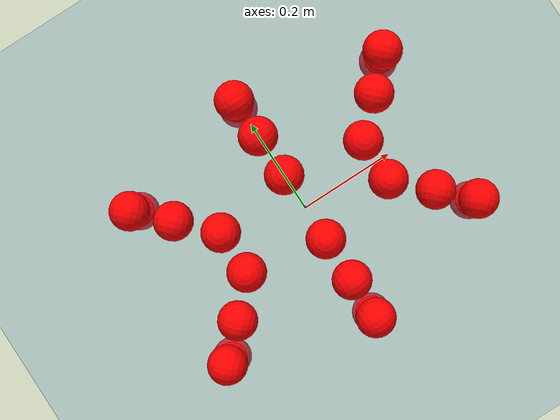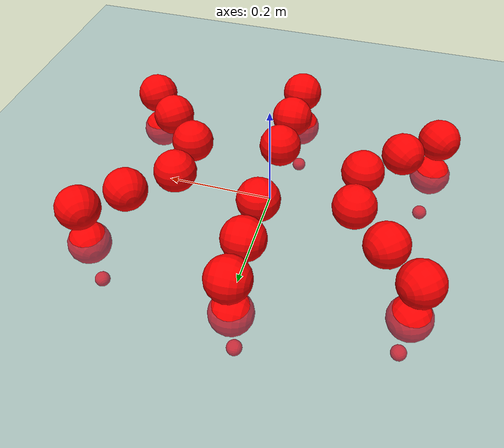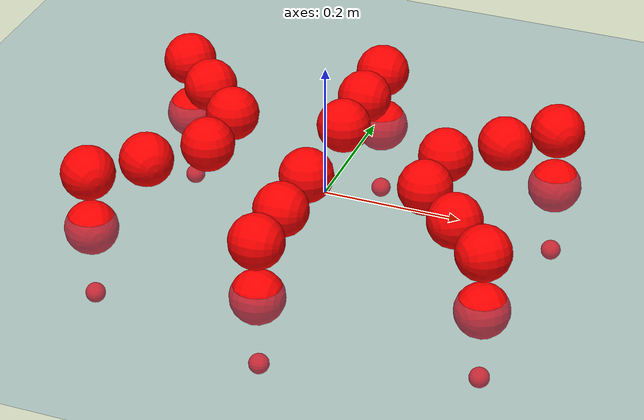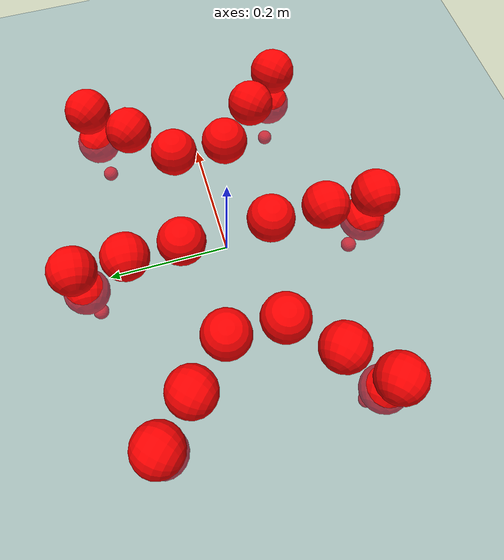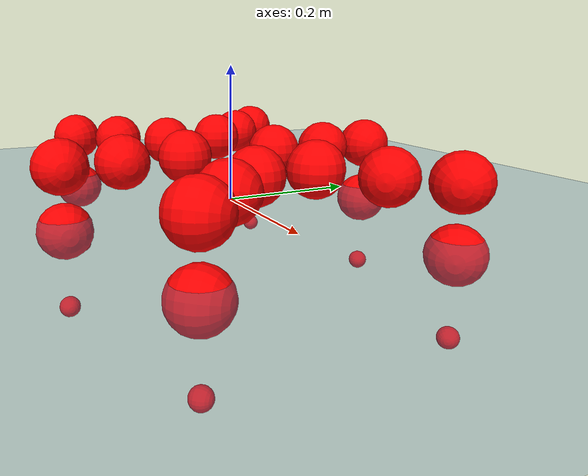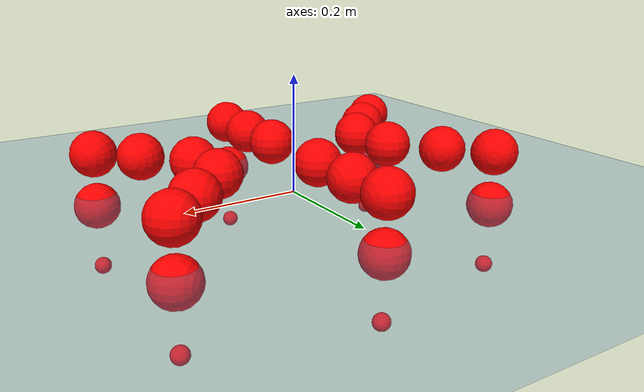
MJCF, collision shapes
<mujoco model="Golem">
  <compiler angle="radian" assetdir="assets" balanceinertia="true" inertiafromgeom="false"/>

  <option timestep="0.005" density="1.2" viscosity="2e-05"/>

  <size nkey="1"/>

  <visual>
    <quality shadowsize="8192"/>
    <map shadowclip="0.5"/>
  </visual>

  <default>
    <default class="/">
      <joint armature="0.01" damping="0.01" frictionloss="0.01"/>
      <geom contype="0" conaffinity="0" group="1" solref="-1000 -80"/>
      <site size="0.01 0.005 0.005" group="5"/>
      <general forcelimited="true" biastype="affine" gainprm="25" biasprm="0 -25 -0.5"/>
      <default class="visual">
        <geom type="mesh" group="2"/>
      </default>
      <default class="collision">
        <geom group="3"/>
      </default>
      <default class="foot">
        <geom size="0.01 0 0" condim="6" group="4" priority="1" solimp="0.015 1 0.01"/>
      </default>
      <default class="reward_collision_sphere">
        <geom group="5" rgba="1 0 0 1"/>
      </default>
    </default>
  </default>

  <asset>
    <texture type="skybox" colorspace="auto" name="//unnamed_texture_0" builtin="gradient" rgb1="0.95 0.95 0.95" rgb2="0.95 0.95 0.95" width="100" height="600"/>
    <texture type="2d" colorspace="auto" name="texplane" builtin="checker" rgb1="0.345 0.575 0.748" rgb2="0.345 0.575 0.748" markrgb="1 1 1" width="512" height="512"/>
    <material name="MatPlane" class="/" texture="texplane" texuniform="true" texrepeat="2 2" specular="0.9"/>
    <mesh name="body" class="/" file="body.stl" scale="0.001 0.001 0.001"/>
    <mesh name="coxa" class="/" file="coxa.stl" scale="0.001 0.001 0.001"/>
    <mesh name="femur" class="/" file="femur.stl" scale="0.001 0.001 0.001"/>
    <mesh name="tibia" class="/" file="tibia.stl" scale="0.001 0.001 0.001"/>
    <mesh name="tarsus" class="/" file="tarsus.stl" scale="0.001 0.001 0.001"/>
  </asset>

  <worldbody>
    <geom name="floor" class="/" size="100 100 0.125" type="plane" group="0" material="MatPlane"/>
    <light name="toplight_shadow" class="/" pos="0 0 5" dir="0.0990148 0.0990148 -0.990148" type="directional" ambient="0.04 0.04 0.04" diffuse="0.55 0.55 0.55" specular="0.12 0.12 0.12"/>
    <light name="toplight_fill" class="/" pos="0 0 5" dir="0.0990148 0.0990148 -0.990148" type="directional" castshadow="false" ambient="0.04 0.04 0.04" diffuse="0.3 0.3 0.3" specular="0.08 0.08 0.08"/>
    <body name="trunk" pos="0.000303519 0.000632878 0.000203135" quat="1 -0.000501384 1.44956e-05 -7.39969e-05">
      <inertial pos="1.85907e-05 0.000316038 -0.00499376" quat="0.999996 0.000733186 -0.000695106 -0.0025773" mass="3.3846" diaginertia="0.011914 0.00309932 0.0159044"/>
      <joint name="//unnamed_joint_0" type="free"/>
      <geom name="//unnamed_geom_1" class="/" pos="0 0 0.0703576" quat="1 0 0 0" type="mesh" rgba="0.9 0.9 0.9 1" mesh="body"/>
      <site name="imu" class="/" pos="0.139073 -0.00157849 0.110332" size="0.00976689"/>
      <camera name="track" class="/" pos="0 -1.5855 0" quat="0.707107 0.707107 0 0" mode="trackcom"/>
      <camera name="ego_camera" class="/" pos="0.134937 0 0.109934" quat="-0.5 -0.5 0.5 0.5"/>
      <body name="coxa_RR" pos="-0.184183 -0.0669041 0.0699386" quat="0.382999 -0.00034642 0.000150095 -0.923749">
        <inertial pos="-0.000138551 0.000439605 -0.000189194" quat="1 0.000259351 0.000137757 0.000116684" mass="0.185509" diaginertia="0.0120555 0.00312613 0.0155421"/>
        <joint name="coxa_joint_RR" class="/" pos="0 0 0" axis="0.00158362 -0.00327427 -0.999993" range="-3.14087 3.15841" armature="0.00957301" damping="0.0116772" frictionloss="0.00956133"/>
        <geom name="//unnamed_geom_2" class="/" type="mesh" rgba="0.2 0.2 0.2 1" mesh="coxa"/>
        <geom name="//unnamed_geom_3" class="reward_collision_sphere" size="0.0390676" pos="-0.0311394 0 0"/>
        <body name="femur_RR" pos="0.0623371 0.00252296 -0.000714278" quat="0.500041 -0.500234 0.499776 0.499948">
          <inertial pos="-0.00185907 -0.000136454 -0.00224351" quat="0.999949 0.00196108 -0.00182461 -0.00969214" mass="0.18504" diaginertia="0.0120019 0.00311105 0.0158237"/>
          <joint name="femur_joint_RR" class="/" pos="0 0 0" axis="0.00514558 0.00287858 -0.999983" stiffness="0.000864922" range="-3.12864 3.13475" armature="0.00961456" damping="0" frictionloss="0.00970155"/>
          <geom name="//unnamed_geom_4" class="/" type="mesh" rgba="0.9 0.9 0.9 1" mesh="femur"/>
          <geom name="//unnamed_geom_5" class="reward_collision_sphere" size="0.0390676"/>
          <body name="tibia_RR" pos="0.00130433 -0.0861938 -0.00139413" quat="-0.000217068 1 -0.00023446 -8.22698e-05">
            <inertial pos="-0.000122323 -0.000219394 -0.00103825" quat="0.999995 0.00165724 0.00223922 0.00176405" mass="0.189282" diaginertia="0.0123762 0.00322804 0.0165653"/>
            <joint name="tibia_joint_RR" class="/" pos="0 0 0" axis="0.00346304 0.00291054 0.99999" range="-3.12733 3.14097" armature="0.0102424" damping="0.000736342" frictionloss="0.00956031"/>
            <geom name="//unnamed_geom_6" class="/" type="mesh" rgba="0.2 0.2 0.2 1" mesh="tibia"/>
            <geom name="//unnamed_geom_7" class="reward_collision_sphere" size="0.0390676"/>
            <body name="tarsus_RR" pos="0.0905296 -0.000491327 -0.000272747" quat="1 -1.06025e-05 0.000101446 -3.98364e-05">
              <inertial pos="0.0643479 0.000519602 -0.000391463" quat="0.501968 0.492337 0.499441 0.506154" mass="0.192443" diaginertia="0.0119484 0.00313375 0.0163666"/>
              <joint name="tarsus_joint_RR" class="/" pos="0 0 0" axis="0.00223839 0.00436754 0.999988" range="-3.14082 3.14545" armature="0.0102395" damping="0.0406827" frictionloss="0.00950907"/>
              <geom name="//unnamed_geom_8" class="/" type="mesh" rgba="0.9 0.9 0.9 1" mesh="tarsus"/>
              <geom name="foot_1" class="foot" size="0.00961538" pos="0.116254 0 0" quat="0 -0.707107 0 0.707107"/>
              <geom name="//unnamed_geom_10" class="reward_collision_sphere" size="0.0390676"/>
              <geom name="//unnamed_geom_11" class="reward_collision_sphere" size="0.0146503" pos="0.111583 0 0"/>
              <site name="foot_1" class="foot" pos="0.116254 0 0" quat="0 -0.707107 0 0.707107" size="0.00976689"/>
            </body>
          </body>
        </body>
      </body>
      <body name="coxa_RM" pos="-0.00036407 -0.104877 0.0709739" quat="0.707398 0.000726486 -0.000466329 -0.706815">
        <inertial pos="-0.000493637 -0.00016059 -0.0012221" quat="0.999999 -0.000421844 -0.00124281 -6.36818e-05" mass="0.18667" diaginertia="0.01184 0.00312526 0.0161561"/>
        <joint name="coxa_joint_RM" class="/" pos="0 0 0" axis="0.000737445 0.000107272 -1" range="-3.14068 3.1271" armature="0.00998293" damping="0.0101811" frictionloss="0.0102616"/>
        <geom name="//unnamed_geom_12" class="/" type="mesh" rgba="0.2 0.2 0.2 1" mesh="coxa"/>
        <geom name="//unnamed_geom_13" class="reward_collision_sphere" size="0.0390676" pos="-0.0311394 0 0"/>
        <body name="femur_RM" pos="0.0616118 -0.000624067 -0.00121583" quat="0.50005 -0.500045 0.49993 0.499975">
          <inertial pos="0.00160569 -0.000144039 3.88289e-05" quat="0.999956 -0.00339428 -0.00685991 0.00547276" mass="0.187101" diaginertia="0.0120086 0.00310986 0.0160002"/>
          <joint name="femur_joint_RM" class="/" pos="0 0 0" axis="0.00326773 0.00075275 -0.999994" range="-3.1454 3.13359" armature="0.00930798" damping="0.00777966" frictionloss="0.0095202"/>
          <geom name="//unnamed_geom_14" class="/" type="mesh" rgba="0.9 0.9 0.9 1" mesh="femur"/>
          <geom name="//unnamed_geom_15" class="reward_collision_sphere" size="0.0390676"/>
          <body name="tibia_RM" pos="-9.08126e-05 -0.0851689 -0.000820197" quat="4.90028e-06 1 -1.00158e-05 1.49454e-05">
            <inertial pos="-0.00182305 -0.00104376 0.000606562" quat="0.999998 -0.00186275 0.00068133 -0.000436345" mass="0.183984" diaginertia="0.0120815 0.0031149 0.0156265"/>
            <joint name="tibia_joint_RM" class="/" pos="0 0 0" axis="0.00267505 0.00316455 0.999991" range="-3.14186 3.15844" armature="0.00986869" damping="0.0133436" frictionloss="0.0102382"/>
            <geom name="//unnamed_geom_16" class="/" type="mesh" rgba="0.2 0.2 0.2 1" mesh="tibia"/>
            <geom name="//unnamed_geom_17" class="reward_collision_sphere" size="0.0390676"/>
            <body name="tarsus_RM" pos="0.0900809 -0.0013889 0.000668198" quat="1 3.02216e-06 -2.16712e-06 -1.80463e-05">
              <inertial pos="0.0621851 -0.000183009 -5.16324e-05" quat="0.499986 0.500006 0.500032 0.499976" mass="0.185572" diaginertia="0.0117533 0.0030981 0.0159563"/>
              <joint name="tarsus_joint_RM" class="/" pos="0 0 0" axis="-0.00218109 -0.000552302 0.999997" range="-3.13359 3.14032" armature="0.00965857" damping="0.00716845" frictionloss="0.00990465"/>
              <geom name="//unnamed_geom_18" class="/" type="mesh" rgba="0.9 0.9 0.9 1" mesh="tarsus"/>
              <geom name="foot_2" class="foot" size="0.00927897" pos="0.116254 0 0" quat="0 -0.707107 0 0.707107"/>
              <geom name="//unnamed_geom_20" class="reward_collision_sphere" size="0.0390676"/>
              <geom name="//unnamed_geom_21" class="reward_collision_sphere" size="0.0146503" pos="0.111583 0 0"/>
              <site name="foot_2" class="foot" pos="0.116254 0 0" quat="0 -0.707107 0 0.707107" size="0.00976689"/>
            </body>
          </body>
        </body>
      </body>
      <body name="coxa_RF" pos="0.185109 -0.0647741 0.0699429" quat="0.923881 5.02791e-05 0.000100613 -0.38268">
        <inertial pos="-0.0019504 6.93726e-05 0.000527952" quat="0.99999 0.00389606 -0.00170317 -0.00151162" mass="0.189356" diaginertia="0.0118142 0.00303078 0.0158424"/>
        <joint name="coxa_joint_RF" class="/" pos="0 0 0" axis="0.00266726 -0.00233854 -0.999994" stiffness="0.000639215" range="-3.11869 3.13987" armature="0.00988666" damping="0.00908449" frictionloss="0.010166"/>
        <geom name="//unnamed_geom_22" class="/" type="mesh" rgba="0.2 0.2 0.2 1" mesh="coxa"/>
        <geom name="//unnamed_geom_23" class="reward_collision_sphere" size="0.0390676" pos="-0.0311394 0 0"/>
        <body name="femur_RF" pos="0.0614992 -0.000786097 0.000307774" quat="0.500154 -0.500308 0.499599 0.499939">
          <inertial pos="-0.000730666 0.00166328 -0.000715646" quat="0.999998 0.000535178 -0.00173156 0.000629166" mass="0.187144" diaginertia="0.0120144 0.00310404 0.015979"/>
          <joint name="femur_joint_RF" class="/" pos="0 0 0" axis="-0.00145902 0.00108864 -0.999998" range="-3.13205 3.1419" armature="0.0098558" damping="0.00940129" frictionloss="0.00994011"/>
          <geom name="//unnamed_geom_24" class="/" type="mesh" rgba="0.9 0.9 0.9 1" mesh="femur"/>
          <geom name="//unnamed_geom_25" class="reward_collision_sphere" size="0.0390676"/>
          <body name="tibia_RF" pos="0.0012008 -0.0846037 0.000119595" quat="-0.000116136 1 0.000256449 0.000223835">
            <inertial pos="-0.00117253 -0.000579721 0.0014974" quat="0.999994 -0.00134706 -0.00330956 -0.000267213" mass="0.186367" diaginertia="0.0120245 0.00314039 0.0159731"/>
            <joint name="tibia_joint_RF" class="/" pos="0 0 0" axis="-0.00138623 -0.00282891 0.999995" range="-3.13864 3.13378" armature="0.00959907" damping="0" frictionloss="0.0097961"/>
            <geom name="//unnamed_geom_26" class="/" type="mesh" rgba="0.2 0.2 0.2 1" mesh="tibia"/>
            <geom name="//unnamed_geom_27" class="reward_collision_sphere" size="0.0390676"/>
            <body name="tarsus_RF" pos="0.0915594 0.00119329 -0.00079492" quat="1 1.19262e-05 -1.32613e-05 -8.19716e-06">
              <inertial pos="0.0602013 8.62165e-05 -2.96827e-05" quat="0.499924 0.49977 0.500362 0.499943" mass="0.183956" diaginertia="0.0118784 0.00320551 0.015893"/>
              <joint name="tarsus_joint_RF" class="/" pos="0 0 0" axis="-0.00218974 0.00857889 0.999961" range="-3.12283 3.13837" armature="0.00997579" damping="0" frictionloss="0.0108137"/>
              <geom name="//unnamed_geom_28" class="/" type="mesh" rgba="0.9 0.9 0.9 1" mesh="tarsus"/>
              <geom name="foot_3" class="foot" size="0.0103525" pos="0.116254 0 0" quat="0 -0.707107 0 0.707107"/>
              <geom name="//unnamed_geom_30" class="reward_collision_sphere" size="0.0390676"/>
              <geom name="//unnamed_geom_31" class="reward_collision_sphere" size="0.0146503" pos="0.111583 0 0"/>
              <site name="foot_3" class="foot" pos="0.116254 0 0" quat="0 -0.707107 0 0.707107" size="0.00976689"/>
            </body>
          </body>
        </body>
      </body>
      <body name="coxa_LR" pos="-0.184575 0.0679619 0.0712895" quat="0.382308 -0.000159807 -0.000390095 0.924035">
        <inertial pos="-0.00027506 -0.000545613 -0.001504" quat="0.999998 -0.0003692 -0.00183968 -0.00108517" mass="0.179201" diaginertia="0.0117162 0.0030433 0.0156116"/>
        <joint name="coxa_joint_LR" class="/" pos="0 0 0" axis="0.000100295 3.37722e-05 -1" range="-3.12691 3.17977" armature="0.00998299" damping="0.0068268" frictionloss="0.00877102"/>
        <geom name="//unnamed_geom_32" class="/" type="mesh" rgba="0.2 0.2 0.2 1" mesh="coxa"/>
        <geom name="//unnamed_geom_33" class="reward_collision_sphere" size="0.0390676" pos="-0.0311394 0 0"/>
        <body name="femur_LR" pos="0.0622827 -0.00278259 -0.00167112" quat="0.500009 -0.500038 0.499996 0.499957">
          <inertial pos="0.000139856 -0.000721729 -0.000336828" quat="0.999993 0.00270807 -0.00237702 0.000130216" mass="0.188298" diaginertia="0.0123193 0.00324656 0.016294"/>
          <joint name="femur_joint_LR" class="/" pos="0 0 0" axis="0.00106459 -0.00486881 0.999988" range="-3.13527 3.13075" armature="0.0096892" damping="0.0105547" frictionloss="0.0100829"/>
          <geom name="//unnamed_geom_34" class="/" type="mesh" rgba="0.9 0.9 0.9 1" mesh="femur"/>
          <geom name="//unnamed_geom_35" class="reward_collision_sphere" size="0.0390676"/>
          <body name="tibia_LR" pos="-0.00037222 -0.0862361 -0.00114719" quat="-0.000144431 1 7.316e-05 0.000162606">
            <inertial pos="-0.000610743 0.0019817 -1.58819e-05" quat="0.999996 0.00200028 0.00204876 0.000708932" mass="0.185346" diaginertia="0.0123202 0.00314716 0.015581"/>
            <joint name="tibia_joint_LR" class="/" pos="0 0 0" axis="0.000756868 0.00140251 -0.999999" range="-3.13742 3.13491" armature="0.00938265" damping="0.00111465" frictionloss="0.00940391"/>
            <geom name="//unnamed_geom_36" class="/" type="mesh" rgba="0.2 0.2 0.2 1" mesh="tibia"/>
            <geom name="//unnamed_geom_37" class="reward_collision_sphere" size="0.0390676"/>
            <body name="tarsus_LR" pos="0.0927416 0.000242392 0.00215175" quat="1 -6.54864e-06 -0.000368823 -0.000422834">
              <inertial pos="0.0639972 0.000950382 0.00102238" quat="0.503984 0.497174 0.499312 0.499505" mass="0.179839" diaginertia="0.0116403 0.00304308 0.0156173"/>
              <joint name="tarsus_joint_LR" class="/" pos="0 0 0" axis="0.00211206 0.00145357 -0.999997" range="-3.14539 3.13751" armature="0.00867946" damping="0.0286068" frictionloss="0.0102006"/>
              <geom name="//unnamed_geom_38" class="/" type="mesh" rgba="0.9 0.9 0.9 1" mesh="tarsus"/>
              <geom name="foot_4" class="foot" size="0.00947296" pos="0.116254 0 0" quat="0.707107 0 -0.707107 0"/>
              <geom name="//unnamed_geom_40" class="reward_collision_sphere" size="0.0390676"/>
              <geom name="//unnamed_geom_41" class="reward_collision_sphere" size="0.0146503" pos="0.111583 0 0"/>
              <site name="foot_4" class="foot" pos="0.116254 0 0" quat="0.707107 0 -0.707107 0" size="0.00976689"/>
            </body>
          </body>
        </body>
      </body>
      <body name="coxa_LM" pos="-0.00061866 0.103883 0.070492" quat="0.707309 0.000421726 -0.00080724 0.706904">
        <inertial pos="0.00135705 -0.00140214 0.00168004" quat="0.999992 -0.00107437 0.000618861 -0.00389132" mass="0.186567" diaginertia="0.0118249 0.00311568 0.0159493"/>
        <joint name="coxa_joint_LM" class="/" pos="0 0 0" axis="-0.00351941 0.00190939 -0.999992" range="-3.13169 3.13953" armature="0.0107732" damping="0" frictionloss="0.00939153"/>
        <geom name="//unnamed_geom_42" class="/" type="mesh" rgba="0.2 0.2 0.2 1" mesh="coxa"/>
        <geom name="//unnamed_geom_43" class="reward_collision_sphere" size="0.0390676" pos="-0.0311394 0 0"/>
        <body name="femur_LM" pos="0.0591791 0.00165071 -0.000873463" quat="0.500001 -0.499954 0.500018 0.500027">
          <inertial pos="-0.000892441 -1.85402e-05 -0.00142446" quat="0.999995 -0.000924368 -6.08345e-05 0.00309114" mass="0.189288" diaginertia="0.0120513 0.00315176 0.0160493"/>
          <joint name="femur_joint_LM" class="/" pos="0 0 0" axis="-0.00517029 0.00126277 0.999986" range="-3.14832 3.12909" armature="0.0096026" damping="0.00620971" frictionloss="0.00982602"/>
          <geom name="//unnamed_geom_44" class="/" type="mesh" rgba="0.9 0.9 0.9 1" mesh="femur"/>
          <geom name="//unnamed_geom_45" class="reward_collision_sphere" size="0.0390676"/>
          <body name="tibia_LM" pos="0.000163893 -0.0825365 0.00123628" quat="8.67265e-07 1 -8.18986e-05 8.70891e-05">
            <inertial pos="0.00178415 -0.00118044 0.0021638" quat="1 0.000122535 0.000121837 6.39755e-05" mass="0.186552" diaginertia="0.0121898 0.00307813 0.0160775"/>
            <joint name="tibia_joint_LM" class="/" pos="0 0 0" axis="0.00139794 0.0049191 -0.999987" range="-3.1518 3.14057" armature="0.00971795" damping="0.00157921" frictionloss="0.00958314"/>
            <geom name="//unnamed_geom_46" class="/" type="mesh" rgba="0.2 0.2 0.2 1" mesh="tibia"/>
            <geom name="//unnamed_geom_47" class="reward_collision_sphere" size="0.0390676"/>
            <body name="tarsus_LM" pos="0.0934383 -0.000843311 -0.00013319" quat="1 -6.53657e-05 -6.74005e-05 -0.000109298">
              <inertial pos="0.0622832 -0.000223791 -0.000501705" quat="0.50113 0.499515 0.501296 0.498052" mass="0.191032" diaginertia="0.0120862 0.0033003 0.0166582"/>
              <joint name="tarsus_joint_LM" class="/" pos="0 0 0" axis="0.00114325 -0.000691496 -0.999999" range="-3.1853 3.14876" armature="0.0098603" damping="0.00102568" frictionloss="0.00980221"/>
              <geom name="//unnamed_geom_48" class="/" type="mesh" rgba="0.9 0.9 0.9 1" mesh="tarsus"/>
              <geom name="foot_5" class="foot" size="0.00991926" pos="0.116254 0 0" quat="0.707107 0 -0.707107 0"/>
              <geom name="//unnamed_geom_50" class="reward_collision_sphere" size="0.0390676"/>
              <geom name="//unnamed_geom_51" class="reward_collision_sphere" size="0.0146503" pos="0.111583 0 0"/>
              <site name="foot_5" class="foot" pos="0.116254 0 0" quat="0.707107 0 -0.707107 0" size="0.00976689"/>
            </body>
          </body>
        </body>
      </body>
      <body name="coxa_LF" pos="0.185081 0.0677593 0.0715301" quat="0.923912 -0.000592932 -0.000540393 0.382605">
        <inertial pos="-0.00015359 0.00211292 0.000714365" quat="1 -7.37611e-06 -9.15523e-05 9.41074e-05" mass="0.189686" diaginertia="0.0124395 0.00322918 0.0164201"/>
        <joint name="coxa_joint_LF" class="/" pos="0 0 0" axis="0.00292482 -0.001076 -0.999995" stiffness="0.000244582" range="-3.13569 3.14698" armature="0.0108715" damping="0.000447224" frictionloss="0.00946443"/>
        <geom name="//unnamed_geom_52" class="/" type="mesh" rgba="0.2 0.2 0.2 1" mesh="coxa"/>
        <geom name="//unnamed_geom_53" class="reward_collision_sphere" size="0.0390676" pos="-0.0311394 0 0"/>
        <body name="femur_LF" pos="0.0623963 -0.00171047 -0.00267547" quat="0.50033 -0.499683 0.499968 0.500019">
          <inertial pos="-0.000168508 3.25348e-05 0.00218666" quat="0.999982 -0.000394733 -0.00325292 -0.00502063" mass="0.187569" diaginertia="0.0121167 0.00321893 0.0159737"/>
          <joint name="femur_joint_LF" class="/" pos="0 0 0" axis="-7.22466e-05 0.000204632 1" range="-3.1349 3.10122" armature="0.00962202" damping="0" frictionloss="0.00963523"/>
          <geom name="//unnamed_geom_54" class="/" type="mesh" rgba="0.9 0.9 0.9 1" mesh="femur"/>
          <geom name="//unnamed_geom_55" class="reward_collision_sphere" size="0.0390676"/>
          <body name="tibia_LF" pos="0.00065275 -0.0855007 0.00128212" quat="0.000452268 1 -0.000277563 -0.000182153">
            <inertial pos="-0.000368774 -0.00155678 0.000265238" quat="0.999998 0.000589109 0.00171977 0.000937843" mass="0.187129" diaginertia="0.012176 0.00313614 0.0162377"/>
            <joint name="tibia_joint_LF" class="/" pos="0 0 0" axis="0.00162214 -0.00685756 -0.999975" range="-3.15812 3.14455" armature="0.00962531" damping="0" frictionloss="0.0105079"/>
            <geom name="//unnamed_geom_56" class="/" type="mesh" rgba="0.2 0.2 0.2 1" mesh="tibia"/>
            <geom name="//unnamed_geom_57" class="reward_collision_sphere" size="0.0390676"/>
            <body name="tarsus_LF" pos="0.0920494 -5.78091e-05 0.000173899" quat="0.999999 0.000856078 0.000303399 -0.000701737">
              <inertial pos="0.0640752 5.17745e-05 0.000401374" quat="0.501032 0.499187 0.501234 0.498542" mass="0.187076" diaginertia="0.011693 0.00304989 0.0158722"/>
              <joint name="tarsus_joint_LF" class="/" pos="0 0 0" axis="-0.00510353 -0.0118484 -0.999917" stiffness="0.0253292" range="-3.15522 3.11943" armature="0.00933877" damping="0.0248927" frictionloss="0.00932738"/>
              <geom name="//unnamed_geom_58" class="/" type="mesh" rgba="0.9 0.9 0.9 1" mesh="tarsus"/>
              <geom name="foot_6" class="foot" size="0.00930106" pos="0.116254 0 0" quat="0.707107 0 -0.707107 0"/>
              <geom name="//unnamed_geom_60" class="reward_collision_sphere" size="0.0390676"/>
              <geom name="//unnamed_geom_61" class="reward_collision_sphere" size="0.0146503" pos="0.111583 0 0"/>
              <site name="foot_6" class="foot" pos="0.116254 0 0" quat="0.707107 0 -0.707107 0" size="0.00976689"/>
            </body>
          </body>
        </body>
      </body>
    </body>
  </worldbody>

  <contact>
    <pair class="/" geom1="floor" geom2="foot_1" name="//unnamed_contact_0"/>
    <pair class="/" geom1="floor" geom2="foot_2" name="//unnamed_contact_1"/>
    <pair class="/" geom1="floor" geom2="foot_3" name="//unnamed_contact_2"/>
    <pair class="/" geom1="floor" geom2="foot_4" name="//unnamed_contact_3"/>
    <pair class="/" geom1="floor" geom2="foot_5" name="//unnamed_contact_4"/>
    <pair class="/" geom1="floor" geom2="foot_6" name="//unnamed_contact_5"/>
  </contact>

  <actuator>
    <general name="coxa_joint_RR" class="/" joint="coxa_joint_RR" forcerange="-6.65577 6.65577" gainprm="23.6618" biasprm="0 -23.6618 -0.51213"/>
    <general name="femur_joint_RR" class="/" joint="femur_joint_RR" forcerange="-6.87002 6.87002" gainprm="23.6618" biasprm="0 -23.6618 -0.51213"/>
    <general name="tibia_joint_RR" class="/" joint="tibia_joint_RR" forcerange="-6.56873 6.56873" gainprm="23.6618" biasprm="0 -23.6618 -0.51213"/>
    <general name="tarsus_joint_RR" class="/" joint="tarsus_joint_RR" forcerange="-6.92249 6.92249" gainprm="23.6618" biasprm="0 -23.6618 -0.51213"/>
    <general name="coxa_joint_RM" class="/" joint="coxa_joint_RM" forcerange="-7.14393 7.14393" gainprm="23.6618" biasprm="0 -23.6618 -0.51213"/>
    <general name="femur_joint_RM" class="/" joint="femur_joint_RM" forcerange="-7.15617 7.15617" gainprm="23.6618" biasprm="0 -23.6618 -0.51213"/>
    <general name="tibia_joint_RM" class="/" joint="tibia_joint_RM" forcerange="-6.76088 6.76088" gainprm="23.6618" biasprm="0 -23.6618 -0.51213"/>
    <general name="tarsus_joint_RM" class="/" joint="tarsus_joint_RM" forcerange="-7.66602 7.66602" gainprm="23.6618" biasprm="0 -23.6618 -0.51213"/>
    <general name="coxa_joint_RF" class="/" joint="coxa_joint_RF" forcerange="-7.11904 7.11904" gainprm="23.6618" biasprm="0 -23.6618 -0.51213"/>
    <general name="femur_joint_RF" class="/" joint="femur_joint_RF" forcerange="-7.20055 7.20055" gainprm="23.6618" biasprm="0 -23.6618 -0.51213"/>
    <general name="tibia_joint_RF" class="/" joint="tibia_joint_RF" forcerange="-7.58048 7.58048" gainprm="23.6618" biasprm="0 -23.6618 -0.51213"/>
    <general name="tarsus_joint_RF" class="/" joint="tarsus_joint_RF" forcerange="-6.86067 6.86067" gainprm="23.6618" biasprm="0 -23.6618 -0.51213"/>
    <general name="coxa_joint_LR" class="/" joint="coxa_joint_LR" forcerange="-7.14053 7.14053" gainprm="23.6618" biasprm="0 -23.6618 -0.51213"/>
    <general name="femur_joint_LR" class="/" joint="femur_joint_LR" forcerange="-6.92387 6.92387" gainprm="23.6618" biasprm="0 -23.6618 -0.51213"/>
    <general name="tibia_joint_LR" class="/" joint="tibia_joint_LR" forcerange="-7.40221 7.40221" gainprm="23.6618" biasprm="0 -23.6618 -0.51213"/>
    <general name="tarsus_joint_LR" class="/" joint="tarsus_joint_LR" forcerange="-7.18596 7.18596" gainprm="23.6618" biasprm="0 -23.6618 -0.51213"/>
    <general name="coxa_joint_LM" class="/" joint="coxa_joint_LM" forcerange="-7.3998 7.3998" gainprm="23.6618" biasprm="0 -23.6618 -0.51213"/>
    <general name="femur_joint_LM" class="/" joint="femur_joint_LM" forcerange="-7.27546 7.27546" gainprm="23.6618" biasprm="0 -23.6618 -0.51213"/>
    <general name="tibia_joint_LM" class="/" joint="tibia_joint_LM" forcerange="-7.08415 7.08415" gainprm="23.6618" biasprm="0 -23.6618 -0.51213"/>
    <general name="tarsus_joint_LM" class="/" joint="tarsus_joint_LM" forcerange="-7.12974 7.12974" gainprm="23.6618" biasprm="0 -23.6618 -0.51213"/>
    <general name="coxa_joint_LF" class="/" joint="coxa_joint_LF" forcerange="-7.37939 7.37939" gainprm="23.6618" biasprm="0 -23.6618 -0.51213"/>
    <general name="femur_joint_LF" class="/" joint="femur_joint_LF" forcerange="-7.03355 7.03355" gainprm="23.6618" biasprm="0 -23.6618 -0.51213"/>
    <general name="tibia_joint_LF" class="/" joint="tibia_joint_LF" forcerange="-7.08957 7.08957" gainprm="23.6618" biasprm="0 -23.6618 -0.51213"/>
    <general name="tarsus_joint_LF" class="/" joint="tarsus_joint_LF" forcerange="-7.40122 7.40122" gainprm="23.6618" biasprm="0 -23.6618 -0.51213"/>
  </actuator>

  <sensor>
    <gyro site="imu" name="imu_angular_velocity"/>
    <velocimeter site="imu" name="imu_linear_velocity"/>
    <framelinvel objtype="site" objname="foot_1" name="foot_1_global_linear_velocity"/>
    <framelinvel objtype="site" objname="foot_2" name="foot_2_global_linear_velocity"/>
    <framelinvel objtype="site" objname="foot_3" name="foot_3_global_linear_velocity"/>
    <framelinvel objtype="site" objname="foot_4" name="foot_4_global_linear_velocity"/>
    <framelinvel objtype="site" objname="foot_5" name="foot_5_global_linear_velocity"/>
    <framelinvel objtype="site" objname="foot_6" name="foot_6_global_linear_velocity"/>
  </sensor>

  <keyframe>
    <key name="home" qpos="0 0 0.1457 1 0 0 0 0 0 0 0 0 0 0 0 0 0 0 0 0 0 0 0 0 0 0 0 0 0 0 0"/>
  </keyframe>
</mujoco>
